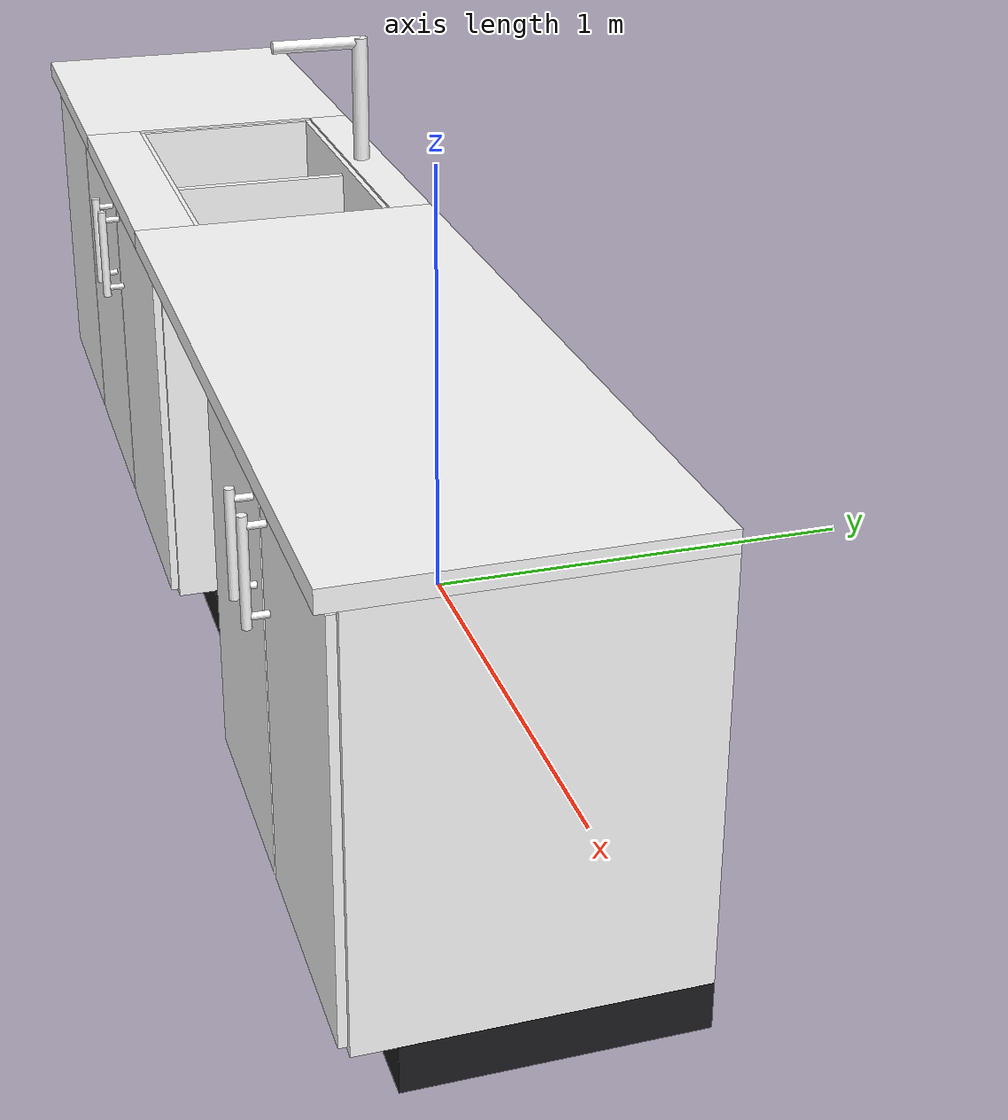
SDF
<?xml version="1.0"?>
<sdf version="1.6">
  <model name="kitchen_base_run_east">
    <static>true</static>
    <link name="link">
      <visual name="toe_kick">
        <pose>0 -0.262 0.0445 0 0 0</pose>
        <geometry><box><size>3.15 0.524 0.089</size></box></geometry>
        <material><ambient>0.11 0.11 0.12 1</ambient><diffuse>0.11 0.11 0.12 1</diffuse><specular>0.05 0.05 0.05 1</specular><emissive>0 0 0 1</emissive></material>
      </visual>
      <visual name="carcass0_w">
        <pose>-1.19 -0.3 0.4745 0 0 0</pose>
        <geometry><box><size>0.77 0.6 0.771</size></box></geometry>
        <material><pbr><metal><albedo_map>textures/wood.png</albedo_map><metalness>0.0</metalness><roughness>0.75</roughness></metal></pbr><ambient>1 1 1 1</ambient><diffuse>1 1 1 1</diffuse><specular>0.25 0.25 0.25 1</specular><emissive>0 0 0 1</emissive></material>
      </visual>
      <visual name="carcass0_e">
        <pose>0 -0.3 0.4745 0 0 0</pose>
        <geometry><box><size>0.09 0.6 0.771</size></box></geometry>
        <material><pbr><metal><albedo_map>textures/wood.png</albedo_map><metalness>0.0</metalness><roughness>0.75</roughness></metal></pbr><ambient>1 1 1 1</ambient><diffuse>1 1 1 1</diffuse><specular>0.25 0.25 0.25 1</specular><emissive>0 0 0 1</emissive></material>
      </visual>
      <visual name="carcass0_sink_back">
        <pose>-0.425 -0.045 0.4745 0 0 0</pose>
        <geometry><box><size>0.76 0.09 0.771</size></box></geometry>
        <material><pbr><metal><albedo_map>textures/wood.png</albedo_map><metalness>0.0</metalness><roughness>0.75</roughness></metal></pbr><ambient>1 1 1 1</ambient><diffuse>1 1 1 1</diffuse><specular>0.25 0.25 0.25 1</specular><emissive>0 0 0 1</emissive></material>
      </visual>
      <visual name="carcass0_sink_front">
        <pose>-0.425 -0.555 0.4745 0 0 0</pose>
        <geometry><box><size>0.76 0.09 0.771</size></box></geometry>
        <material><pbr><metal><albedo_map>textures/wood.png</albedo_map><metalness>0.0</metalness><roughness>0.75</roughness></metal></pbr><ambient>1 1 1 1</ambient><diffuse>1 1 1 1</diffuse><specular>0.25 0.25 0.25 1</specular><emissive>0 0 0 1</emissive></material>
      </visual>
      <visual name="carcass1">
        <pose>1.11 -0.3 0.4745 0 0 0</pose>
        <geometry><box><size>0.93 0.6 0.771</size></box></geometry>
        <material><pbr><metal><albedo_map>textures/wood.png</albedo_map><metalness>0.0</metalness><roughness>0.75</roughness></metal></pbr><ambient>1 1 1 1</ambient><diffuse>1 1 1 1</diffuse><specular>0.25 0.25 0.25 1</specular><emissive>0 0 0 1</emissive></material>
      </visual>
      <visual name="counter_w">
        <pose>-1.19 -0.3175 0.88 0 0 0</pose>
        <geometry><box><size>0.77 0.635 0.04</size></box></geometry>
        <material><pbr><metal><albedo_map>textures/marble.png</albedo_map><metalness>0.1</metalness><roughness>0.25</roughness></metal></pbr><ambient>1 1 1 1</ambient><diffuse>1 1 1 1</diffuse><specular>0.25 0.25 0.25 1</specular><emissive>0 0 0 1</emissive></material>
      </visual>
      <visual name="counter_e">
        <pose>0.765 -0.3175 0.88 0 0 0</pose>
        <geometry><box><size>1.62 0.635 0.04</size></box></geometry>
        <material><pbr><metal><albedo_map>textures/marble.png</albedo_map><metalness>0.1</metalness><roughness>0.25</roughness></metal></pbr><ambient>1 1 1 1</ambient><diffuse>1 1 1 1</diffuse><specular>0.25 0.25 0.25 1</specular><emissive>0 0 0 1</emissive></material>
      </visual>
      <visual name="counter_sink_back">
        <pose>-0.425 -0.045 0.88 0 0 0</pose>
        <geometry><box><size>0.76 0.09 0.04</size></box></geometry>
        <material><pbr><metal><albedo_map>textures/marble.png</albedo_map><metalness>0.1</metalness><roughness>0.25</roughness></metal></pbr><ambient>1 1 1 1</ambient><diffuse>1 1 1 1</diffuse><specular>0.25 0.25 0.25 1</specular><emissive>0 0 0 1</emissive></material>
      </visual>
      <visual name="counter_sink_front">
        <pose>-0.425 -0.5725 0.88 0 0 0</pose>
        <geometry><box><size>0.76 0.125 0.04</size></box></geometry>
        <material><pbr><metal><albedo_map>textures/marble.png</albedo_map><metalness>0.1</metalness><roughness>0.25</roughness></metal></pbr><ambient>1 1 1 1</ambient><diffuse>1 1 1 1</diffuse><specular>0.25 0.25 0.25 1</specular><emissive>0 0 0 1</emissive></material>
      </visual>
      <visual name="basin_floor">
        <pose>-0.425 -0.3 0.704 0 0 0</pose>
        <geometry><box><size>0.736 0.396 0.012</size></box></geometry>
        <material><pbr><metal><albedo_map>textures/stainless.png</albedo_map><metalness>0.15</metalness><roughness>0.25</roughness></metal></pbr><ambient>1 1 1 1</ambient><diffuse>1 1 1 1</diffuse><specular>1 1 1 1</specular><emissive>0 0 0 1</emissive></material>
      </visual>
      <visual name="basin_back">
        <pose>-0.425 -0.096 0.8 0 0 0</pose>
        <geometry><box><size>0.76 0.012 0.19</size></box></geometry>
        <material><pbr><metal><albedo_map>textures/stainless.png</albedo_map><metalness>0.15</metalness><roughness>0.25</roughness></metal></pbr><ambient>1 1 1 1</ambient><diffuse>1 1 1 1</diffuse><specular>1 1 1 1</specular><emissive>0 0 0 1</emissive></material>
      </visual>
      <visual name="basin_front">
        <pose>-0.425 -0.504 0.8 0 0 0</pose>
        <geometry><box><size>0.76 0.012 0.19</size></box></geometry>
        <material><pbr><metal><albedo_map>textures/stainless.png</albedo_map><metalness>0.15</metalness><roughness>0.25</roughness></metal></pbr><ambient>1 1 1 1</ambient><diffuse>1 1 1 1</diffuse><specular>1 1 1 1</specular><emissive>0 0 0 1</emissive></material>
      </visual>
      <visual name="basin_west">
        <pose>-0.799 -0.3 0.8 0 0 0</pose>
        <geometry><box><size>0.012 0.396 0.19</size></box></geometry>
        <material><pbr><metal><albedo_map>textures/stainless.png</albedo_map><metalness>0.15</metalness><roughness>0.25</roughness></metal></pbr><ambient>1 1 1 1</ambient><diffuse>1 1 1 1</diffuse><specular>1 1 1 1</specular><emissive>0 0 0 1</emissive></material>
      </visual>
      <visual name="basin_east">
        <pose>-0.051 -0.3 0.8 0 0 0</pose>
        <geometry><box><size>0.012 0.396 0.19</size></box></geometry>
        <material><pbr><metal><albedo_map>textures/stainless.png</albedo_map><metalness>0.15</metalness><roughness>0.25</roughness></metal></pbr><ambient>1 1 1 1</ambient><diffuse>1 1 1 1</diffuse><specular>1 1 1 1</specular><emissive>0 0 0 1</emissive></material>
      </visual>
      <visual name="basin_divider">
        <pose>-0.425 -0.3 0.7875 0 0 0</pose>
        <geometry><box><size>0.02 0.396 0.155</size></box></geometry>
        <material><pbr><metal><albedo_map>textures/stainless.png</albedo_map><metalness>0.15</metalness><roughness>0.25</roughness></metal></pbr><ambient>1 1 1 1</ambient><diffuse>1 1 1 1</diffuse><specular>1 1 1 1</specular><emissive>0 0 0 1</emissive></material>
      </visual>
      <visual name="faucet_body">
        <pose>-0.425 -0.055 1.04 0 0 0</pose>
        <geometry><cylinder><radius>0.018</radius><length>0.28</length></cylinder></geometry>
        <material><pbr><metal><albedo_map>textures/stainless.png</albedo_map><metalness>0.25</metalness><roughness>0.15</roughness></metal></pbr><ambient>1 1 1 1</ambient><diffuse>1 1 1 1</diffuse><specular>1 1 1 1</specular><emissive>0 0 0 1</emissive></material>
      </visual>
      <visual name="faucet_spout">
        <pose>-0.425 -0.155 1.17 1.5708 0 0</pose>
        <geometry><cylinder><radius>0.014</radius><length>0.2</length></cylinder></geometry>
        <material><pbr><metal><albedo_map>textures/stainless.png</albedo_map><metalness>0.25</metalness><roughness>0.15</roughness></metal></pbr><ambient>1 1 1 1</ambient><diffuse>1 1 1 1</diffuse><specular>1 1 1 1</specular><emissive>0 0 0 1</emissive></material>
      </visual>
      <visual name="door0">
        <pose>-1.301 -0.608 0.475 0 0 0</pose>
        <geometry><box><size>0.524 0.016 0.75</size></box></geometry>
        <material><pbr><metal><albedo_map>textures/wood.png</albedo_map><metalness>0.0</metalness><roughness>0.55</roughness></metal></pbr><ambient>1 1 1 1</ambient><diffuse>1 1 1 1</diffuse><specular>0.25 0.25 0.25 1</specular><emissive>0 0 0 1</emissive></material>
      </visual>
      <visual name="door1">
        <pose>-0.765 -0.608 0.475 0 0 0</pose>
        <geometry><box><size>0.524 0.016 0.75</size></box></geometry>
        <material><pbr><metal><albedo_map>textures/wood.png</albedo_map><metalness>0.0</metalness><roughness>0.55</roughness></metal></pbr><ambient>1 1 1 1</ambient><diffuse>1 1 1 1</diffuse><specular>0.25 0.25 0.25 1</specular><emissive>0 0 0 1</emissive></material>
      </visual>
      <visual name="door1_handle_bar">
        <pose>-0.548 -0.654 0.72 0 0 0</pose>
        <geometry><cylinder><radius>0.009</radius><length>0.2</length></cylinder></geometry>
        <material><pbr><metal><albedo_map>textures/stainless.png</albedo_map><metalness>0.25</metalness><roughness>0.15</roughness></metal></pbr><ambient>1 1 1 1</ambient><diffuse>1 1 1 1</diffuse><specular>1 1 1 1</specular><emissive>0 0 0 1</emissive></material>
      </visual>
      <visual name="door1_handle_post0">
        <pose>-0.548 -0.635 0.64 1.5708 0 0</pose>
        <geometry><cylinder><radius>0.0063</radius><length>0.038</length></cylinder></geometry>
        <material><pbr><metal><albedo_map>textures/stainless.png</albedo_map><metalness>0.25</metalness><roughness>0.15</roughness></metal></pbr><ambient>1 1 1 1</ambient><diffuse>1 1 1 1</diffuse><specular>1 1 1 1</specular><emissive>0 0 0 1</emissive></material>
      </visual>
      <visual name="door1_handle_post1">
        <pose>-0.548 -0.635 0.8 1.5708 0 0</pose>
        <geometry><cylinder><radius>0.0063</radius><length>0.038</length></cylinder></geometry>
        <material><pbr><metal><albedo_map>textures/stainless.png</albedo_map><metalness>0.25</metalness><roughness>0.15</roughness></metal></pbr><ambient>1 1 1 1</ambient><diffuse>1 1 1 1</diffuse><specular>1 1 1 1</specular><emissive>0 0 0 1</emissive></material>
      </visual>
      <visual name="door2">
        <pose>-0.229 -0.608 0.475 0 0 0</pose>
        <geometry><box><size>0.524 0.016 0.75</size></box></geometry>
        <material><pbr><metal><albedo_map>textures/wood.png</albedo_map><metalness>0.0</metalness><roughness>0.55</roughness></metal></pbr><ambient>1 1 1 1</ambient><diffuse>1 1 1 1</diffuse><specular>0.25 0.25 0.25 1</specular><emissive>0 0 0 1</emissive></material>
      </visual>
      <visual name="door2_handle_bar">
        <pose>-0.446 -0.654 0.72 0 0 0</pose>
        <geometry><cylinder><radius>0.009</radius><length>0.2</length></cylinder></geometry>
        <material><pbr><metal><albedo_map>textures/stainless.png</albedo_map><metalness>0.25</metalness><roughness>0.15</roughness></metal></pbr><ambient>1 1 1 1</ambient><diffuse>1 1 1 1</diffuse><specular>1 1 1 1</specular><emissive>0 0 0 1</emissive></material>
      </visual>
      <visual name="door2_handle_post0">
        <pose>-0.446 -0.635 0.64 1.5708 0 0</pose>
        <geometry><cylinder><radius>0.0063</radius><length>0.038</length></cylinder></geometry>
        <material><pbr><metal><albedo_map>textures/stainless.png</albedo_map><metalness>0.25</metalness><roughness>0.15</roughness></metal></pbr><ambient>1 1 1 1</ambient><diffuse>1 1 1 1</diffuse><specular>1 1 1 1</specular><emissive>0 0 0 1</emissive></material>
      </visual>
      <visual name="door2_handle_post1">
        <pose>-0.446 -0.635 0.8 1.5708 0 0</pose>
        <geometry><cylinder><radius>0.0063</radius><length>0.038</length></cylinder></geometry>
        <material><pbr><metal><albedo_map>textures/stainless.png</albedo_map><metalness>0.25</metalness><roughness>0.15</roughness></metal></pbr><ambient>1 1 1 1</ambient><diffuse>1 1 1 1</diffuse><specular>1 1 1 1</specular><emissive>0 0 0 1</emissive></material>
      </visual>
      <visual name="door3">
        <pose>0.8805 -0.608 0.475 0 0 0</pose>
        <geometry><box><size>0.447 0.016 0.75</size></box></geometry>
        <material><pbr><metal><albedo_map>textures/wood.png</albedo_map><metalness>0.0</metalness><roughness>0.55</roughness></metal></pbr><ambient>1 1 1 1</ambient><diffuse>1 1 1 1</diffuse><specular>0.25 0.25 0.25 1</specular><emissive>0 0 0 1</emissive></material>
      </visual>
      <visual name="door3_handle_bar">
        <pose>1.059 -0.654 0.72 0 0 0</pose>
        <geometry><cylinder><radius>0.009</radius><length>0.2</length></cylinder></geometry>
        <material><pbr><metal><albedo_map>textures/stainless.png</albedo_map><metalness>0.25</metalness><roughness>0.15</roughness></metal></pbr><ambient>1 1 1 1</ambient><diffuse>1 1 1 1</diffuse><specular>1 1 1 1</specular><emissive>0 0 0 1</emissive></material>
      </visual>
      <visual name="door3_handle_post0">
        <pose>1.059 -0.635 0.64 1.5708 0 0</pose>
        <geometry><cylinder><radius>0.0063</radius><length>0.038</length></cylinder></geometry>
        <material><pbr><metal><albedo_map>textures/stainless.png</albedo_map><metalness>0.25</metalness><roughness>0.15</roughness></metal></pbr><ambient>1 1 1 1</ambient><diffuse>1 1 1 1</diffuse><specular>1 1 1 1</specular><emissive>0 0 0 1</emissive></material>
      </visual>
      <visual name="door3_handle_post1">
        <pose>1.059 -0.635 0.8 1.5708 0 0</pose>
        <geometry><cylinder><radius>0.0063</radius><length>0.038</length></cylinder></geometry>
        <material><pbr><metal><albedo_map>textures/stainless.png</albedo_map><metalness>0.25</metalness><roughness>0.15</roughness></metal></pbr><ambient>1 1 1 1</ambient><diffuse>1 1 1 1</diffuse><specular>1 1 1 1</specular><emissive>0 0 0 1</emissive></material>
      </visual>
      <visual name="door4">
        <pose>1.3395 -0.608 0.475 0 0 0</pose>
        <geometry><box><size>0.447 0.016 0.75</size></box></geometry>
        <material><pbr><metal><albedo_map>textures/wood.png</albedo_map><metalness>0.0</metalness><roughness>0.55</roughness></metal></pbr><ambient>1 1 1 1</ambient><diffuse>1 1 1 1</diffuse><specular>0.25 0.25 0.25 1</specular><emissive>0 0 0 1</emissive></material>
      </visual>
      <visual name="door4_handle_bar">
        <pose>1.161 -0.654 0.72 0 0 0</pose>
        <geometry><cylinder><radius>0.009</radius><length>0.2</length></cylinder></geometry>
        <material><pbr><metal><albedo_map>textures/stainless.png</albedo_map><metalness>0.25</metalness><roughness>0.15</roughness></metal></pbr><ambient>1 1 1 1</ambient><diffuse>1 1 1 1</diffuse><specular>1 1 1 1</specular><emissive>0 0 0 1</emissive></material>
      </visual>
      <visual name="door4_handle_post0">
        <pose>1.161 -0.635 0.64 1.5708 0 0</pose>
        <geometry><cylinder><radius>0.0063</radius><length>0.038</length></cylinder></geometry>
        <material><pbr><metal><albedo_map>textures/stainless.png</albedo_map><metalness>0.25</metalness><roughness>0.15</roughness></metal></pbr><ambient>1 1 1 1</ambient><diffuse>1 1 1 1</diffuse><specular>1 1 1 1</specular><emissive>0 0 0 1</emissive></material>
      </visual>
      <visual name="door4_handle_post1">
        <pose>1.161 -0.635 0.8 1.5708 0 0</pose>
        <geometry><cylinder><radius>0.0063</radius><length>0.038</length></cylinder></geometry>
        <material><pbr><metal><albedo_map>textures/stainless.png</albedo_map><metalness>0.25</metalness><roughness>0.15</roughness></metal></pbr><ambient>1 1 1 1</ambient><diffuse>1 1 1 1</diffuse><specular>1 1 1 1</specular><emissive>0 0 0 1</emissive></material>
      </visual>
      <collision name="toe_kick">
        <pose>0 -0.262 0.0445 0 0 0</pose>
        <geometry><box><size>3.15 0.524 0.089</size></box></geometry>
      </collision>
      <collision name="body">
        <pose>0 -0.308 0.4945 0 0 0</pose>
        <geometry><box><size>3.15 0.616 0.811</size></box></geometry>
      </collision>
    </link>
    <allow_auto_disable>1</allow_auto_disable>
  </model>
</sdf>
